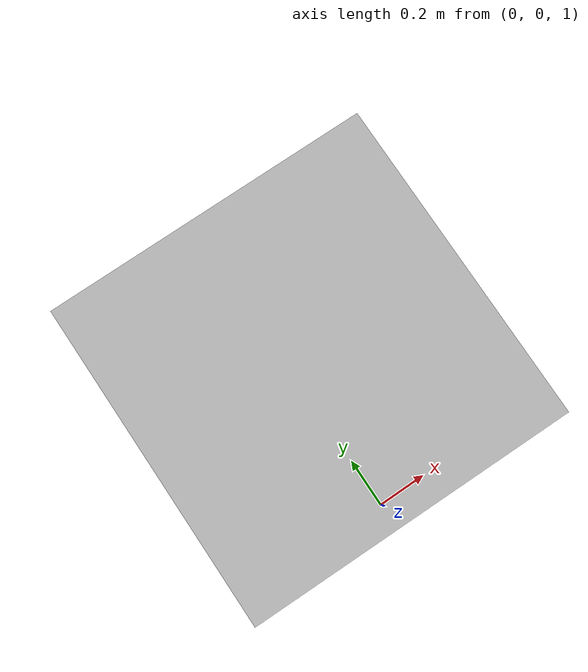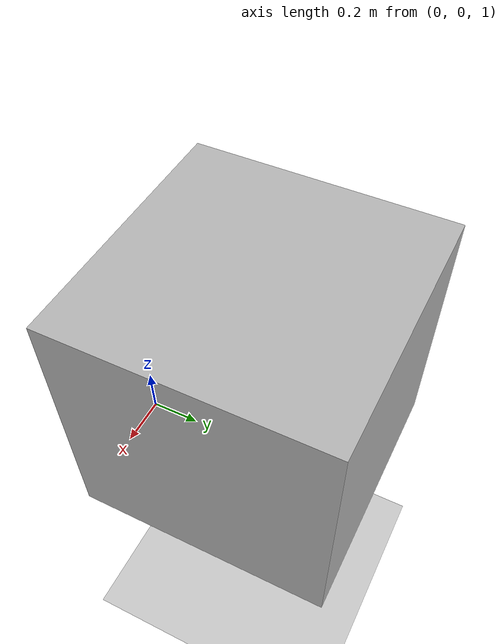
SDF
<?xml version="1.0" ?>
<sdf version="1.5">
  <world name="default">
    <include>
      <uri>model://sun</uri>
    </include>

    <include>
      <uri>model://ground_plane</uri>
    </include>

    <model name="model">
      <link name="link">
        <pose>0 0.5 1.5 0 0 0</pose>
        <collision name="collision">
          <geometry>
            <box>
              <size>1 1 1</size>
            </box>
          </geometry>
        </collision>
        <visual name="visual">
          <geometry>
            <box>
              <size>1 1 1</size>
            </box>
          </geometry>
        </visual>
      </link>
      <joint name="joint" type="revolute">
        <pose>0 -0.5 -0.5 0 0 0</pose>
        <parent>world</parent>
        <child>link</child>
        <axis>
          <xyz>1 0 0</xyz>
          <limit>
            <lower>-0.785398</lower>
            <upper> 0.785398</upper>
          </limit>
        </axis>
      </joint>
      <plugin name="moveCoG" filename="libMoveCoGPlugin.so"/>
    </model>
  </world>
</sdf>
